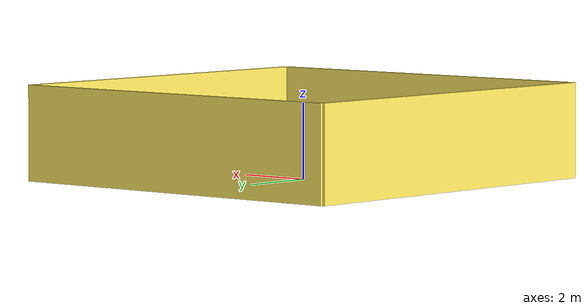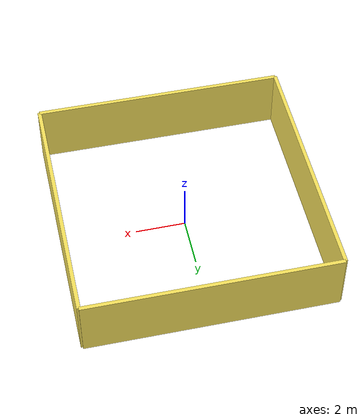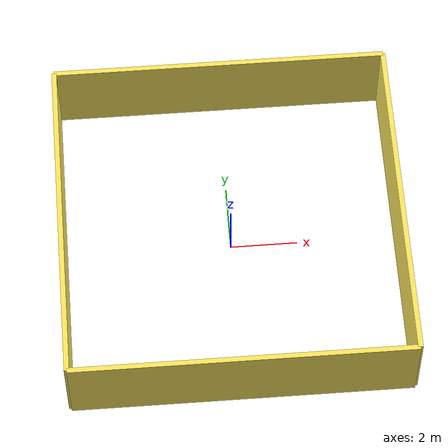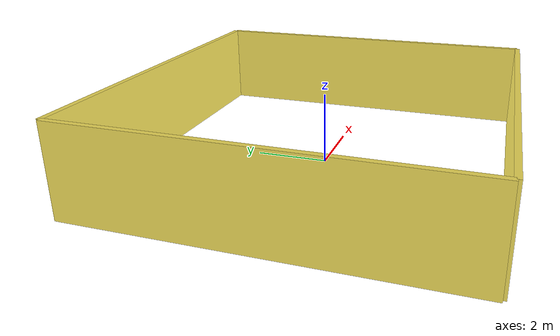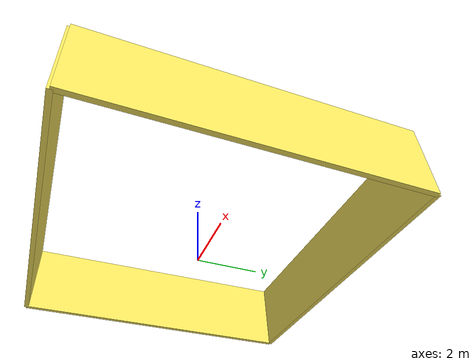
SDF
<?xml version='1.0'?>
<sdf version='1.7'>
  <model name='area'>
    <pose>0 0 0 0 -0 0</pose>
    <link name='Wall_29'>
      <collision name='Wall_29_Collision'>
        <geometry>
          <box>
            <size>10 0.15 2.5</size>
          </box>
        </geometry>
        <pose>0 0 1.25 0 -0 0</pose>
      </collision>
      <visual name='Wall_29_Visual'>
        <pose>0 0 1.25 0 -0 0</pose>
        <geometry>
          <box>
            <size>10 0.15 2.5</size>
          </box>
        </geometry>
        <material>
          <script>
            <uri>file://media/materials/scripts/gazebo.material</uri>
            <name>Gazebo/Grey</name>
          </script>
          <ambient>0.972549 0.894118 0.360784 1</ambient>
        </material>
        <meta>
          <layer>0</layer>
        </meta>
      </visual>
      <pose>-5 0 0 0 -0 -1.5708</pose>
    </link>
    <link name='Wall_30'>
      <collision name='Wall_30_Collision'>
        <geometry>
          <box>
            <size>10 0.15 2.5</size>
          </box>
        </geometry>
        <pose>0 0 1.25 0 -0 0</pose>
      </collision>
      <visual name='Wall_30_Visual'>
        <pose>0 0 1.25 0 -0 0</pose>
        <geometry>
          <box>
            <size>10 0.15 2.5</size>
          </box>
        </geometry>
        <material>
          <script>
            <uri>file://media/materials/scripts/gazebo.material</uri>
            <name>Gazebo/Grey</name>
          </script>
          <ambient>0.972549 0.894118 0.360784 1</ambient>
        </material>
        <meta>
          <layer>0</layer>
        </meta>
      </visual>
      <pose>0 -5 0 0 -0 0</pose>
    </link>
    <link name='Wall_33'>
      <collision name='Wall_33_Collision'>
        <geometry>
          <box>
            <size>10 0.15 2.5</size>
          </box>
        </geometry>
        <pose>0 0 1.25 0 -0 0</pose>
      </collision>
      <visual name='Wall_33_Visual'>
        <pose>0 0 1.25 0 -0 0</pose>
        <geometry>
          <box>
            <size>10 0.15 2.5</size>
          </box>
        </geometry>
        <material>
          <script>
            <uri>file://media/materials/scripts/gazebo.material</uri>
            <name>Gazebo/Grey</name>
          </script>
          <ambient>0.972549 0.894118 0.360784 1</ambient>
        </material>
        <meta>
          <layer>0</layer>
        </meta>
      </visual>
      <pose>5 0 0 0 -0 1.5708</pose>
    </link>
    <link name='Wall_34'>
      <collision name='Wall_34_Collision'>
        <geometry>
          <box>
            <size>10 0.15 2.5</size>
          </box>
        </geometry>
        <pose>0 0 1.25 0 -0 0</pose>
      </collision>
      <visual name='Wall_34_Visual'>
        <pose>0 0 1.25 0 -0 0</pose>
        <geometry>
          <box>
            <size>10 0.15 2.5</size>
          </box>
        </geometry>
        <material>
          <script>
            <uri>file://media/materials/scripts/gazebo.material</uri>
            <name>Gazebo/Grey</name>
          </script>
          <ambient>0.972549 0.894118 0.360784 1</ambient>
        </material>
        <meta>
          <layer>0</layer>
        </meta>
      </visual>
      <pose>0 5 0 0 -0 3.14159</pose>
    </link>
    <static>1</static>
  </model>
</sdf>
